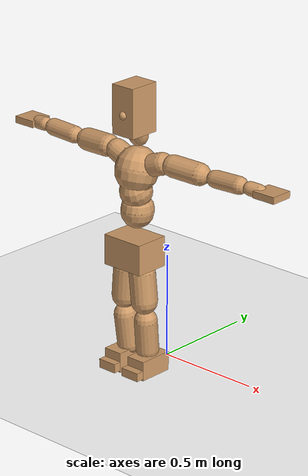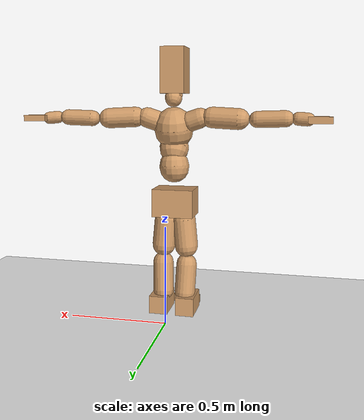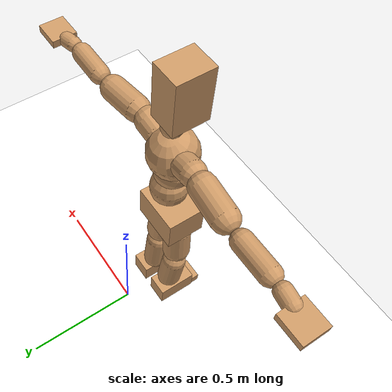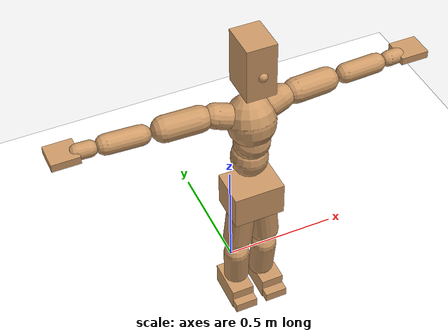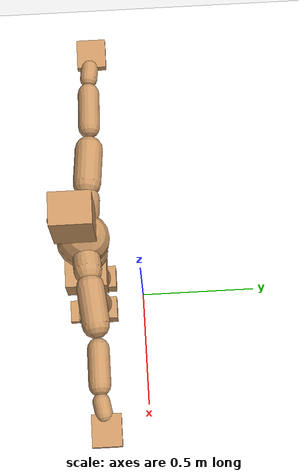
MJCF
<mujoco model="humanoid">
  <option integrator="implicitfast" />

  <visual>
    <global offwidth="1280" offheight="960" />
    <headlight active="1" ambient="0.34 0.34 0.34" diffuse="0.5 0.5 0.5" />
  </visual>

  <default>
    <joint damping="2" stiffness="2" armature="0.01" limited="true" solimplimit="0 .99 .01" />
    <geom condim="1" friction="0.7 0.005 0.0001" solimp=".99 .99 .003" solref="0.015 1" margin="0.001" rgba="0.8 0.6 .4 1" />
    <default class="smplcontact">
      <geom condim="3" friction="1. 0.005 0.0001" solref="0.015 1" solimp="0.98 0.98 0.001" priority="1" />
    </default>
    <default class="stiff_medium">
      <joint stiffness="10" />
    </default>
    <default class="stiff_medium_higher">
      <joint stiffness="50" />
    </default>
    <default class="stiff_high">
      <joint stiffness="100" />
    </default>
  </default>

  <asset>
    <texture type="skybox" builtin="gradient" rgb1="0.99 0.99 0.99" rgb2="0.608 0.828 0.892" width="100" />
    <texture builtin="flat" height="1278" mark="cross" markrgb="1 1 1" name="texgeom" random="0.01" rgb1="0.8 0.6 0.4" rgb2="0.8 0.6 0.4" type="cube" width="127" />
    <texture name="texplane" type="2d" builtin="checker" markrgb="1 1 1" rgb1="0.756 0.772 0.76" rgb2="0.6 0.6 0.6" width="100" height="100" />
    <material name="MatPlane" reflectance="0.5" texture="texplane" texrepeat="1 1" texuniform="true" />
    <material name="geom" texture="texgeom" texuniform="true" />
  </asset>

  <worldbody>
    <light name="tracking_light" pos="0 0 7" dir="0 0 -1" directional="true" cutoff="100" exponent="1" diffuse="1 1 1" specular="0.1 0.1 0.1" mode="trackcom" />
    <camera name="back" pos="0 3 2.4" xyaxes="-1 0 0 0 -1 2" mode="trackcom" />
    <camera name="side" pos="-3 0 2.4" xyaxes="0 -1 0 1 0 2" mode="trackcom" />
    <camera name="front_side" pos="-2.8 -2.8 0.8" xyaxes="0.5 -0.5 0 0.1 0.1 1" mode="trackcom" />
    <geom condim="3" name="floor" pos="0 0 0" rgba="1 1 1 1" size="100 100 .2" type="plane" material="MatPlane" />
    <body name="Pelvis" pos="-0.0018 -0.2233 0.603363" euler="90 0 0">
      <site name="Pelvis" size="0.01" />
      <freejoint name="Pelvis" />
      <geom type="box" pos="-0.0000 -0.0121 -0.0055" size="0.1069 0.0722 0.083" quat="1.0000 0.0000 0.0000 0.0000" density="3165.830099" name="Pelvis" />
      <body name="L_Hip" pos="0.0434375 -0.057125 -0.00425">
        <joint name="L_Hip_x" type="hinge" pos="0 0 0" axis="1 0 0" stiffness="4.682612346938775" range="-160.0 22.92" class="stiff_medium" damping="5.761376063259233" armature="0.003150516248715214"/>
        <joint name="L_Hip_y" type="hinge" pos="0 0 0" axis="0 1 0" stiffness="4.729285204081632" range="-70.0 70.0" class="stiff_medium" damping="5.2271909514404244" armature="0.005777516910851338"/>
        <joint name="L_Hip_z" type="hinge" pos="0 0 0" axis="0 0 1" stiffness="4.725288673469388" range="-28.65 90.0" class="stiff_medium" damping="3.8557989532863886" armature="0.003146302077085307"/>
        <geom type="capsule" density="2040.816327" fromto="0.0043125 -0.046875 -0.0005625 0.017125 -0.187625 -0.00225" size="0.0615" name="L_Hip" />
        <body name="L_Knee" pos="0.0214375 -0.2345 -0.0028125">
          <joint name="L_Knee_x" type="hinge" pos="0 0 0" axis="1 0 0" range="-5.16 171.89" damping="3.3147767653831215" armature="0.0034682055009749224" stiffness="0.9900423469387756"/>
          <joint name="L_Knee_y" type="hinge" pos="0 0 0" axis="0 1 0" range="-4.58 6.88" damping="4.406653617352898" armature="0.006327520325715421" stiffness="0.9590346565349543"/>
          <joint name="L_Knee_z" type="hinge" pos="0 0 0" axis="0 0 1" range="-6.88 4.58" damping="3.32725262272365" armature="0.003445606353385672" stiffness="1.0040513265306124"/>
          <geom type="capsule" density="1234.567901" fromto="-0.0016875 -0.04975 -0.0054375 -0.0068125 -0.199 -0.021875" size="0.0541" name="L_Knee" />
          <body name="L_Ankle" pos="-0.0085 -0.24875 -0.0273125">
            <joint name="L_Ankle_x" type="hinge" pos="0 0 0" axis="1 0 0" range="-45.84 45.84" class="stiff_medium" damping="3.6717736084900556" armature="0.005991965080890705" stiffness="6.25"/>
            <joint name="L_Ankle_y" type="hinge" pos="0 0 0" axis="0 1 0" range="-74.48 22.92" class="stiff_medium" damping="1.8585891029846908" armature="0.006141072806637222" stiffness="6.25"/>
            <joint name="L_Ankle_z" type="hinge" pos="0 0 0" axis="0 0 1" range="-4.58 4.58" class="stiff_medium" damping="4.001717943795461" armature="0.00711722066741981" stiffness="6.25"/>
            <geom type="box" pos="0.0145625 -0.0149375 0.015125" size="0.0483 0.0464 0.085" quat="1.0000 0.0000 0.0000 0.0000" density="449.071558" name="L_Ankle" class="smplcontact" />
            <body name="L_Toe" pos="0.0165 -0.034875 0.0745625">
              <joint name="L_Toe_x" type="hinge" pos="0 0 0" axis="1 0 0" range="-91.67 22.92" armature="0.007683229914736756" damping="1.3859319891986723" stiffness="1.25"/>
              <joint name="L_Toe_y" type="hinge" pos="0 0 0" axis="0 1 0" range="-4.58 4.58" armature="0.008367648440754674" damping="1.446344395428927" stiffness="1.25"/>
              <joint name="L_Toe_z" type="hinge" pos="0 0 0" axis="0 0 1" range="-4.58 4.58" armature="0.009751505861703973" damping="1.5613700603719776" stiffness="1.25"/>
              <geom type="box" pos="-0.001875 0.0034375 0.0155" size="0.0478 0.02 0.0496" quat="1.0000 0.0000 0.0000 0.0000" density="423.206892" name="L_Toe" class="smplcontact" />
            </body>
          </body>
        </body>
      </body>
      <body name="R_Hip" pos="-0.0423125 -0.0565625 -0.0026875">
        <joint name="R_Hip_x" type="hinge" pos="0 0 0" axis="1 0 0" stiffness="4.682612346938775" range="-160.0 22.92" class="stiff_medium" damping="5.761376063259233" armature="0.003150516248715214"/>
        <joint name="R_Hip_y" type="hinge" pos="0 0 0" axis="0 1 0" stiffness="4.729285204081632" range="-70.0 70.0" class="stiff_medium" damping="5.2271909514404244" armature="0.005777516910851338"/>
        <joint name="R_Hip_z" type="hinge" pos="0 0 0" axis="0 0 1" stiffness="4.725288673469388" range="-90.0 28.65" class="stiff_medium" damping="3.8557989532863886" armature="0.003146302077085307"/>
        <geom type="capsule" density="2040.816327" fromto="-0.0048125 -0.0478125 -0.001125 -0.019125 -0.191312 -0.0044375" size="0.0606" name="R_Hip" />
        <body name="R_Knee" pos="-0.0239375 -0.239125 -0.0055625">
          <joint name="R_Knee_x" type="hinge" pos="0 0 0" axis="1 0 0" range="-5.16 171.89" damping="3.3147767653831215" armature="0.0034682055009749224" stiffness="0.9900423469387756"/>
          <joint name="R_Knee_y" type="hinge" pos="0 0 0" axis="0 1 0" range="-6.88 4.58" damping="4.406653617352898" armature="0.006327520325715421" stiffness="0.9590346565349543"/>
          <joint name="R_Knee_z" type="hinge" pos="0 0 0" axis="0 0 1" range="-4.58 6.88" damping="3.32725262272365" armature="0.003445606353385672" stiffness="1.0040513265306124"/>
          <geom type="capsule" density="1234.567901" fromto="0.002 -0.0498125 -0.0053125 0.007875 -0.199187 -0.021125" size="0.0541" name="R_Knee" />
          <body name="R_Ankle" pos="0.009875 -0.249 -0.0264375">
            <joint name="R_Ankle_x" type="hinge" pos="0 0 0" axis="1 0 0" range="-45.84 45.84" class="stiff_medium" damping="3.6717736084900556" armature="0.005991965080890705" stiffness="6.25"/>
            <joint name="R_Ankle_y" type="hinge" pos="0 0 0" axis="0 1 0" range="-22.92 74.48" class="stiff_medium" damping="1.8585891029846908" armature="0.006141072806637222" stiffness="6.25"/>
            <joint name="R_Ankle_z" type="hinge" pos="0 0 0" axis="0 0 1" range="-4.58 4.58" class="stiff_medium" damping="4.001717943795461" armature="0.00711722066741981" stiffness="6.25"/>
            <geom type="box" pos="-0.01325 -0.010875 0.016" size="0.0483 0.0478 0.0865" quat="1.0000 0.0000 0.0000 0.0000" density="434.700981" name="R_Ankle" class="smplcontact" />
            <body name="R_Toe" pos="-0.015875 -0.0300625 0.0770625">
              <joint name="R_Toe_x" type="hinge" pos="0 0 0" axis="1 0 0" range="-91.67 22.92" armature="0.007683229914736756" damping="1.3859319891986723" stiffness="1.25"/>
              <joint name="R_Toe_y" type="hinge" pos="0 0 0" axis="0 1 0" range="-4.58 4.58" armature="0.008367648440754674" damping="1.446344395428927" stiffness="1.25"/>
              <joint name="R_Toe_z" type="hinge" pos="0 0 0" axis="0 0 1" range="-4.58 4.58" armature="0.009751505861703973" damping="1.5613700603719776" stiffness="1.25"/>
              <geom type="box" pos="0.002625 0.0028125 0.0141875" size="0.0479 0.0216 0.0493" quat="1.0000 0.0000 0.0000 0.0000" density="407.384095" name="R_Toe" class="smplcontact" />
            </body>
          </body>
        </body>
      </body>
      <body name="Torso" pos="-0.0025 0.109 -0.0267">
        <joint name="Torso_x" type="hinge" pos="0 0 0" axis="1 0 0" range="-25.78 57.3" class="stiff_medium" damping="14.377725126950713" armature="0.009518929822817209" stiffness="9.651831020408164"/>
        <joint name="Torso_y" type="hinge" pos="0 0 0" axis="0 1 0" range="-57.3 57.3" class="stiff_high" damping="17.047281200761134" armature="0.007489541703378375" stiffness="97.00519999999999"/>
        <joint name="Torso_z" type="hinge" pos="0 0 0" axis="0 0 1" range="-34.38 34.38" class="stiff_high" damping="18.56536513512957" armature="0.008825226346331878" stiffness="97.63851063829787"/>
        <geom type="capsule" density="2040.816327" fromto="0.0025 0.0608 0.0005 0.003 0.0743 0.0006" size="0.0769" name="Torso" />
        <body name="Spine" pos="0.0055 0.1352 0.0011">
          <joint name="Spine_x" type="hinge" pos="0 0 0" axis="1 0 0" stiffness="9.58583163265306" range="-25.78 57.3" class="stiff_medium" damping="14.26918361208374" armature="0.009440303089812765"/>
          <joint name="Spine_y" type="hinge" pos="0 0 0" axis="0 1 0" stiffness="9.576922244897958" range="-57.3 57.3" class="stiff_high" damping="6.76738571868883" armature="0.007471983870182017"/>
          <joint name="Spine_z" type="hinge" pos="0 0 0" axis="0 0 1" stiffness="19.01161469387755" range="-34.38 34.38" class="stiff_high" damping="10.689541255547075" armature="0.008347696197381863"/>
          <geom type="capsule" density="2040.816327" fromto="0.0007 0.0238 0.0114 0.0008 0.0291 0.014" size="0.0755" name="Spine" />
          <body name="Chest" pos="0.0015 0.0529 0.0254">
            <joint name="Chest_x" type="hinge" pos="0 0 0" axis="1 0 0" stiffness="9.387211020408163" range="-25.78 57.3" class="stiff_medium" damping="14.087997898862078" armature="0.009396788619791431"/>
            <joint name="Chest_y" type="hinge" pos="0 0 0" axis="0 1 0" stiffness="8.88616191489362" range="-57.3 57.3" class="stiff_high" damping="6.5161693940165115" armature="0.00746604382925993"/>
            <joint name="Chest_z" type="hinge" pos="0 0 0" axis="0 0 1" stiffness="18.95676244897959" range="-34.38 34.38" class="stiff_high" damping="10.53982249103985" armature="0.008138979020284567"/>
            <geom type="capsule" density="2040.816327" fromto="-0.0009 0.0682 -0.0173 -0.001 0.0833 -0.0212" size="0.1002" name="Chest" />
            <body name="Neck" pos="-0.0028 0.2139 -0.0429">
              <joint name="Neck_x" type="hinge" pos="0 0 0" axis="1 0 0" range="-28.65 57.3" class="stiff_medium_higher" damping="10.000000000000007" armature="0.010000000000000016" stiffness="50.0"/>
              <joint name="Neck_y" type="hinge" pos="0 0 0" axis="0 1 0" range="-40.11 40.11" class="stiff_medium_higher" damping="10.0" armature="0.01" stiffness="50.0"/>
              <joint name="Neck_z" type="hinge" pos="0 0 0" axis="0 0 1" range="-40.11 40.11" class="stiff_medium_higher" damping="10.000000000000014" armature="0.010000000000000026" stiffness="50.0"/>
              <geom type="capsule" density="1000" fromto="0.001 0.013 0.0103 0.0041 0.052 0.0411" size="0.0436" name="Neck" />
              <body name="Head" pos="0.0052 0.065 0.0513">
                <joint name="Head_x" type="hinge" pos="0 0 0" axis="1 0 0" range="-28.65 57.3" class="stiff_medium_higher" damping="2.000000000000003" armature="0.010000000000000031" stiffness="50.0"/>
                <joint name="Head_y" type="hinge" pos="0 0 0" axis="0 1 0" range="-40.11 40.11" class="stiff_medium_higher" damping="1.9999999999999998" armature="0.009999999999999998" stiffness="50.0"/>
                <joint name="Head_z" type="hinge" pos="0 0 0" axis="0 0 1" range="-40.11 40.11" class="stiff_medium_higher" damping="2.000000000000004" armature="0.010000000000000042" stiffness="50.0"/>
                <geom type="box" pos="-0.0042 0.0876 -0.0116" size="0.0606 0.1154 0.076" quat="1.0000 0.0000 0.0000 0.0000" density="1018.069894" name="Head" />
                <geom type="capsule" name="nose" size="0.02 0.01" pos="0 0.07 0.05" quat="1 0 0 0" mass="0" contype="0" conaffinity="0" />
              </body>
            </body>
            <body name="L_Thorax" pos="0.069935 0.108009 -0.0302637">
              <joint name="L_Thorax_x" type="hinge" pos="0 0 0" axis="1 0 0" range="-10.89 4.58" class="stiff_medium_higher" damping="16.50367442936431" armature="0.008237289712880716" stiffness="41.33205204081632"/>
              <joint name="L_Thorax_y" type="hinge" pos="0 0 0" axis="0 1 0" range="-28.65 17.19" class="stiff_medium_higher" damping="15.615380485833972" armature="0.007397181758642917" stiffness="41.2049"/>
              <joint name="L_Thorax_z" type="hinge" pos="0 0 0" axis="0 0 1" range="-31.51 40.11" class="stiff_medium_higher" damping="15.614845288813932" armature="0.007396422580499301" stiffness="41.206304591836734"/>
              <geom type="capsule" density="1000" fromto="0.0161525 0.00541375 -0.0015975 0.06461 0.021655 -0.00630125" size="0.0521" name="L_Thorax" />
              <body name="L_Shoulder" pos="0.0807625 0.0270687 -0.00789875">
                <joint name="L_Shoulder_x" type="hinge" pos="0 0 0" axis="1 0 0" range="-97.4 97.4" class="stiff_medium" damping="5.053222703168444" armature="0.008561219507331136" stiffness="8.28511887755102"/>
                <joint name="L_Shoulder_y" type="hinge" pos="0 0 0" axis="0 1 0" range="-108.86 80.21" class="stiff_medium" damping="4.696052433643626" armature="0.007424828192243072" stiffness="8.25043724489796"/>
                <joint name="L_Shoulder_z" type="hinge" pos="0 0 0" axis="0 0 1" range="-97.4 85.94" class="stiff_medium" damping="4.696316861704073" armature="0.007423822707357086" stiffness="8.252483979591837"/>
                <geom type="capsule" density="1000" fromto="0.0460612 -0.0023075 -0.00488125 0.184334 -0.0090525 -0.019525" size="0.0517" name="L_Shoulder" />
                <body name="L_Elbow" pos="0.230395 -0.01136 -0.0244062">
                  <joint name="L_Elbow_x" type="hinge" pos="0 0 0" axis="1 0 0" range="-17.19 4.58" damping="4.35790590630549" armature="0.009089595760700233" stiffness="1.6714797346938777"/>
                  <joint name="L_Elbow_y" type="hinge" pos="0 0 0" axis="0 1 0" range="-180.0 17.19" damping="3.973960072278748" armature="0.0075599991822537654" stiffness="1.6711492448979592"/>
                  <joint name="L_Elbow_z" type="hinge" pos="0 0 0" axis="0 0 1" range="-100.84 4.58" damping="3.9732408069423326" armature="0.007554721526974213" stiffness="1.671711387755102"/>
                  <geom type="capsule" density="1000" fromto="0.0441975 0.0015975 -0.0001775 0.176967 0.00639 -0.00079875" size="0.0405" name="L_Elbow" />
                  <body name="L_Wrist" pos="0.221165 0.0079875 -0.001065">
                    <joint name="L_Wrist_x" type="hinge" pos="0 0 0" axis="1 0 0" range="-180.0 22.92" armature="0.00926838898361612" damping="1.7953441559357752" stiffness="1.738846224489796"/>
                    <joint name="L_Wrist_y" type="hinge" pos="0 0 0" axis="0 1 0" range="-17.19 17.19" armature="0.008039907338787608" damping="1.6695812073111214" stiffness="1.7335407551020405"/>
                    <joint name="L_Wrist_z" type="hinge" pos="0 0 0" axis="0 0 1" range="-22.92 22.92" armature="0.007970783232335157" damping="1.663414263462603" stiffness="1.7356807551020408"/>
                    <geom type="capsule" density="1000" fromto="0.01491 -0.00142 -0.0026625 0.05964 -0.00576875 -0.01065" size="0.0318" name="L_Wrist" class="smplcontact" />
                    <body name="L_Hand" pos="0.07455 -0.0072775 -0.0132237">
                      <joint name="L_Hand_x" type="hinge" pos="0 0 0" axis="1 0 0" range="-17.19 17.19" armature="0.009907489981019355" damping="1.8754085109863605" stiffness="1.7749990612244897"/>
                      <joint name="L_Hand_y" type="hinge" pos="0 0 0" axis="0 1 0" range="-51.57 51.57" armature="0.008881214164334949" damping="1.7756208279347765" stiffness="1.7749990408163265"/>
                      <joint name="L_Hand_z" type="hinge" pos="0 0 0" axis="0 0 1" range="-91.67 91.67" armature="0.008607646402110845" damping="1.7480597104275557" stiffness="1.7749990000000002"/>
                      <geom type="box" pos="0.0437537 0.0008875 -0.0051475" size="0.0585 0.0158 0.0538" quat="1.0000 0.0000 0.0000 0.0000" density="400.552564" name="L_Hand" class="smplcontact" />
                    </body>
                  </body>
                </body>
              </body>
            </body>
            <body name="R_Thorax" pos="-0.0725975 0.105435 -0.0342575">
              <joint name="R_Thorax_x" type="hinge" pos="0 0 0" axis="1 0 0" range="-10.89 4.58" class="stiff_medium_higher" damping="16.50367442936431" armature="0.008237289712880716" stiffness="41.33205204081632"/>
              <joint name="R_Thorax_y" type="hinge" pos="0 0 0" axis="0 1 0" range="-17.19 28.65" class="stiff_medium_higher" damping="15.615380485833972" armature="0.007397181758642917" stiffness="41.2049"/>
              <joint name="R_Thorax_z" type="hinge" pos="0 0 0" axis="0 0 1" range="-40.11 31.51" class="stiff_medium_higher" damping="15.614845288813932" armature="0.007396422580499301" stiffness="41.206304591836734"/>
              <geom type="capsule" density="1000" fromto="-0.01704 0.00576875 -0.0015975 -0.06816 0.023075 -0.00647875" size="0.0511" name="R_Thorax" />
              <body name="R_Shoulder" pos="-0.0852 0.0289325 -0.00807625">
                <joint name="R_Shoulder_x" type="hinge" pos="0 0 0" axis="1 0 0" range="-97.4 97.4" class="stiff_medium" damping="5.053222703168444" armature="0.008561219507331136" stiffness="8.28511887755102"/>
                <joint name="R_Shoulder_y" type="hinge" pos="0 0 0" axis="0 1 0" range="-80.21 108.86" class="stiff_medium" damping="4.696052433643626" armature="0.007424828192243072" stiffness="8.25043724489796"/>
                <joint name="R_Shoulder_z" type="hinge" pos="0 0 0" axis="0 0 1" range="-85.94 97.4" class="stiff_medium" damping="4.696316861704073" armature="0.007423822707357086" stiffness="8.252483979591837"/>
                <geom type="capsule" density="1000" fromto="-0.0449963 -0.00239625 -0.00381625 -0.180163 -0.00949625 -0.0151763" size="0.0531" name="R_Shoulder" />
                <body name="R_Elbow" pos="-0.225159 -0.0118037 -0.0189925">
                  <joint name="R_Elbow_x" type="hinge" pos="0 0 0" axis="1 0 0" range="-17.19 4.58" damping="4.35790590630549" armature="0.009089595760700233" stiffness="1.6714797346938777"/>
                  <joint name="R_Elbow_y" type="hinge" pos="0 0 0" axis="0 1 0" range="-17.19 180.0" damping="3.973960072278748" armature="0.0075599991822537654" stiffness="1.6711492448979592"/>
                  <joint name="R_Elbow_z" type="hinge" pos="0 0 0" axis="0 0 1" range="-4.58 100.84" damping="3.9732408069423326" armature="0.007554721526974213" stiffness="1.671711387755102"/>
                  <geom type="capsule" density="1000" fromto="-0.0453512 0.00142 -0.00097625 -0.181227 0.0055025 -0.003905" size="0.0408" name="R_Elbow" />
                  <body name="R_Wrist" pos="-0.226579 0.0069225 -0.00497">
                    <joint name="R_Wrist_x" type="hinge" pos="0 0 0" axis="1 0 0" range="-180.0 22.92" armature="0.00926838898361612" damping="1.7953441559357752" stiffness="1.738846224489796"/>
                    <joint name="R_Wrist_y" type="hinge" pos="0 0 0" axis="0 1 0" range="-17.19 17.19" armature="0.008039907338787608" damping="1.6695812073111214" stiffness="1.7335407551020405"/>
                    <joint name="R_Wrist_z" type="hinge" pos="0 0 0" axis="0 0 1" range="-22.92 22.92" armature="0.007970783232335157" damping="1.663414263462603" stiffness="1.7356807551020408"/>
                    <geom type="capsule" density="1000" fromto="-0.0149987 -0.001065 -0.00186375 -0.0600837 -0.00434875 -0.00736625" size="0.0326" name="R_Wrist" class="smplcontact" />
                    <body name="R_Hand" pos="-0.0750825 -0.00541375 -0.00914125">
                      <joint name="R_Hand_x" type="hinge" pos="0 0 0" axis="1 0 0" range="-17.19 17.19" armature="0.009907489981019355" damping="1.8754085109863605" stiffness="1.7749990612244897"/>
                      <joint name="R_Hand_y" type="hinge" pos="0 0 0" axis="0 1 0" range="-51.57 51.57" armature="0.008881214164334949" damping="1.7756208279347765" stiffness="1.7749990408163265"/>
                      <joint name="R_Hand_z" type="hinge" pos="0 0 0" axis="0 0 1" range="-91.67 91.67" armature="0.008607646402110845" damping="1.7480597104275557" stiffness="1.7749990000000002"/>
                      <geom type="box" pos="-0.0410025 -0.00079875 -0.00701125" size="0.0569 0.0164 0.0546" quat="1.0000 0.0000 0.0000 0.0000" density="403.679611" name="R_Hand" class="smplcontact" />
                    </body>
                  </body>
                </body>
              </body>
            </body>
          </body>
        </body>
      </body>
    </body>
  </worldbody>
  <actuator>
    <general name="L_Hip_x" joint="L_Hip_x" biastype="affine" gainprm="134.5455305788832" biasprm="-100.82823820114426 -84.28702224489795 -0.7681834751012311" ctrllimited="true" ctrlrange="-1 1" forcerange="-168.5740444897959 168.5740444897959" />
    <general name="L_Hip_y" joint="L_Hip_y" biastype="affine" gainprm="104.00241357711633" biasprm="0.0 -85.12713367346939 -1.045438190288085" ctrllimited="true" ctrlrange="-1 1" forcerange="-170.25426734693878 170.25426734693878" />
    <general name="L_Hip_z" joint="L_Hip_z" biastype="affine" gainprm="88.0675601736452" biasprm="45.53682947031718 -85.05519612244898 -0.7711597906572777" ctrllimited="true" ctrlrange="-1 1" forcerange="-170.11039224489795 170.11039224489795" />
    <general name="L_Knee_x" joint="L_Knee_x" biastype="affine" gainprm="137.6700859239888" biasprm="129.64548673316378 -89.1038112244898 -0.8286941913457804" ctrllimited="true" ctrlrange="-1 1" forcerange="-178.2076224489796 178.2076224489796" />
    <general name="L_Knee_y" joint="L_Knee_y" biastype="affine" gainprm="8.63194770327106" biasprm="1.7324153331172283 -86.3131190881459 -1.1016634043382245" ctrllimited="true" ctrlrange="-1 1" forcerange="-172.6262381762918 172.6262381762918" />
    <general name="L_Knee_z" joint="L_Knee_z" biastype="affine" gainprm="9.03712757714746" biasprm="-1.8137341559720035 -90.36461938775511 -0.8318131556809125" ctrllimited="true" ctrlrange="-1 1" forcerange="-180.72923877551023 180.72923877551023" />
    <general name="L_Ankle_x" joint="L_Ankle_x" biastype="affine" gainprm="45.003314762673796" biasprm="0.0 -56.25 -1.223924536163352" ctrllimited="true" ctrlrange="-1 1" forcerange="-112.5 112.5" />
    <general name="L_Ankle_y" joint="L_Ankle_y" biastype="affine" gainprm="47.811113196819676" biasprm="-25.309455815482774 -56.25 -1.2390594019897938" ctrllimited="true" ctrlrange="-1 1" forcerange="-112.5 112.5" />
    <general name="L_Ankle_z" joint="L_Ankle_z" biastype="affine" gainprm="4.496404485450391" biasprm="0.0 -56.25 -1.3339059812651537" ctrllimited="true" ctrlrange="-1 1" forcerange="-112.5 112.5" />
    <general name="L_Toe_x" joint="L_Toe_x" biastype="affine" gainprm="44.999387771856796" biasprm="-26.998061866787282 -45.0 -0.554372795679469" ctrllimited="true" ctrlrange="-1 1" forcerange="-90.0 90.0" />
    <general name="L_Toe_y" joint="L_Toe_y" biastype="affine" gainprm="3.597123588360313" biasprm="0.0 -45.0 -0.5785377581715708" ctrllimited="true" ctrlrange="-1 1" forcerange="-90.0 90.0" />
    <general name="L_Toe_z" joint="L_Toe_z" biastype="affine" gainprm="3.597123588360313" biasprm="0.0 -45.0 -0.6245480241487911" ctrllimited="true" ctrlrange="-1 1" forcerange="-90.0 90.0" />
    <general name="R_Hip_x" joint="R_Hip_x" biastype="affine" gainprm="134.5455305788832" biasprm="-100.82823820114426 -84.28702224489795 -0.7681834751012311" ctrllimited="true" ctrlrange="-1 1" forcerange="-168.5740444897959 168.5740444897959" />
    <general name="R_Hip_y" joint="R_Hip_y" biastype="affine" gainprm="104.00241357711633" biasprm="0.0 -85.12713367346939 -1.045438190288085" ctrllimited="true" ctrlrange="-1 1" forcerange="-170.25426734693878 170.25426734693878" />
    <general name="R_Hip_z" joint="R_Hip_z" biastype="affine" gainprm="88.0675601736452" biasprm="-45.53682947031718 -85.05519612244898 -0.7711597906572777" ctrllimited="true" ctrlrange="-1 1" forcerange="-170.11039224489795 170.11039224489795" />
    <general name="R_Knee_x" joint="R_Knee_x" biastype="affine" gainprm="137.6700859239888" biasprm="129.64548673316378 -89.1038112244898 -0.8286941913457804" ctrllimited="true" ctrlrange="-1 1" forcerange="-178.2076224489796 178.2076224489796" />
    <general name="R_Knee_y" joint="R_Knee_y" biastype="affine" gainprm="8.63194770327106" biasprm="-1.7324153331172283 -86.3131190881459 -1.1016634043382245" ctrllimited="true" ctrlrange="-1 1" forcerange="-172.6262381762918 172.6262381762918" />
    <general name="R_Knee_z" joint="R_Knee_z" biastype="affine" gainprm="9.03712757714746" biasprm="1.8137341559720035 -90.36461938775511 -0.8318131556809125" ctrllimited="true" ctrlrange="-1 1" forcerange="-180.72923877551023 180.72923877551023" />
    <general name="R_Ankle_x" joint="R_Ankle_x" biastype="affine" gainprm="45.003314762673796" biasprm="0.0 -56.25 -1.223924536163352" ctrllimited="true" ctrlrange="-1 1" forcerange="-112.5 112.5" />
    <general name="R_Ankle_y" joint="R_Ankle_y" biastype="affine" gainprm="47.811113196819676" biasprm="25.309455815482774 -56.25 -1.2390594019897938" ctrllimited="true" ctrlrange="-1 1" forcerange="-112.5 112.5" />
    <general name="R_Ankle_z" joint="R_Ankle_z" biastype="affine" gainprm="4.496404485450391" biasprm="0.0 -56.25 -1.3339059812651537" ctrllimited="true" ctrlrange="-1 1" forcerange="-112.5 112.5" />
    <general name="R_Toe_x" joint="R_Toe_x" biastype="affine" gainprm="44.999387771856796" biasprm="-26.998061866787282 -45.0 -0.554372795679469" ctrllimited="true" ctrlrange="-1 1" forcerange="-90.0 90.0" />
    <general name="R_Toe_y" joint="R_Toe_y" biastype="affine" gainprm="3.597123588360313" biasprm="0.0 -45.0 -0.5785377581715708" ctrllimited="true" ctrlrange="-1 1" forcerange="-90.0 90.0" />
    <general name="R_Toe_z" joint="R_Toe_z" biastype="affine" gainprm="3.597123588360313" biasprm="0.0 -45.0 -0.6245480241487911" ctrllimited="true" ctrlrange="-1 1" forcerange="-90.0 90.0" />
    <general name="Torso_x" joint="Torso_x" biastype="affine" gainprm="167.94412321258363" biasprm="63.71688449278569 -231.64394448979593 -3.8340600338535236" ctrllimited="true" ctrlrange="-1 1" forcerange="-347.4659167346939 347.4659167346939" />
    <general name="Torso_y" joint="Torso_y" biastype="affine" gainprm="232.82962929152654" biasprm="0.0 -232.81248 -3.4094562401522266" ctrllimited="true" ctrlrange="-1 1" forcerange="-349.21871999999996 349.21871999999996" />
    <general name="Torso_z" joint="Torso_z" biastype="affine" gainprm="140.60981207084777" biasprm="0.0 -234.33242553191488 -3.7130730270259145" ctrllimited="true" ctrlrange="-1 1" forcerange="-351.49863829787233 351.49863829787233" />
    <general name="Spine_x" joint="Spine_x" biastype="affine" gainprm="166.79571838808337" biasprm="63.28118733259974 -230.05995918367344 -3.805115629888997" ctrllimited="true" ctrlrange="-1 1" forcerange="-345.0899387755102 345.0899387755102" />
    <general name="Spine_y" joint="Spine_y" biastype="affine" gainprm="229.8630646638908" biasprm="0.0 -229.846133877551 -3.383692859344415" ctrllimited="true" ctrlrange="-1 1" forcerange="-344.76920081632653 344.76920081632653" />
    <general name="Spine_z" joint="Spine_z" biastype="affine" gainprm="136.89370883443928" biasprm="0.0 -228.1393763265306 -3.563180418515692" ctrllimited="true" ctrlrange="-1 1" forcerange="-342.2090644897959 342.2090644897959" />
    <general name="Chest_x" joint="Chest_x" biastype="affine" gainprm="163.33967315636679" biasprm="61.969986734336544 -225.29306448979594 -3.7567994396965543" ctrllimited="true" ctrlrange="-1 1" forcerange="-337.9395967346939 337.9395967346939" />
    <general name="Chest_y" joint="Chest_y" biastype="affine" gainprm="213.2835955669555" biasprm="0.0 -213.26788595744688 -3.2580846970082558" ctrllimited="true" ctrlrange="-1 1" forcerange="-319.9018289361703 319.9018289361703" />
    <general name="Chest_z" joint="Chest_z" biastype="affine" gainprm="136.49874357962614" biasprm="0.0 -227.48114938775507 -3.51327416367995" ctrllimited="true" ctrlrange="-1 1" forcerange="-341.2217240816326 341.2217240816326" />
    <general name="Neck_x" joint="Neck_x" biastype="affine" gainprm="27.00198885760427" biasprm="9.000662952534757 -36.0 -0.8000000000000006" ctrllimited="true" ctrlrange="-1 1" forcerange="-72.0 72.0" />
    <general name="Neck_y" joint="Neck_y" biastype="affine" gainprm="25.20185626709732" biasprm="0.0 -36.0 -0.8" ctrllimited="true" ctrlrange="-1 1" forcerange="-72.0 72.0" />
    <general name="Neck_z" joint="Neck_z" biastype="affine" gainprm="25.20185626709732" biasprm="0.0 -36.0 -0.8000000000000012" ctrllimited="true" ctrlrange="-1 1" forcerange="-72.0 72.0" />
    <general name="Head_x" joint="Head_x" biastype="affine" gainprm="18.001325905069514" biasprm="6.000441968356505 -24.0 -0.8000000000000013" ctrllimited="true" ctrlrange="-1 1" forcerange="-48.0 48.0" />
    <general name="Head_y" joint="Head_y" biastype="affine" gainprm="16.801237511398213" biasprm="0.0 -24.0 -0.7999999999999999" ctrllimited="true" ctrlrange="-1 1" forcerange="-48.0 48.0" />
    <general name="Head_z" joint="Head_z" biastype="affine" gainprm="16.801237511398213" biasprm="0.0 -24.0 -0.8000000000000016" ctrllimited="true" ctrlrange="-1 1" forcerange="-48.0 48.0" />
    <general name="L_Thorax_x" joint="L_Thorax_x" biastype="affine" gainprm="13.391705647542844" biasprm="-5.462292348803839 -99.19692489795918 -1.320293954349145" ctrllimited="true" ctrlrange="-1 1" forcerange="-198.39384979591836 198.39384979591836" />
    <general name="L_Thorax_y" joint="L_Thorax_y" biastype="affine" gainprm="39.55961780190927" biasprm="-9.889904450477317 -98.89176 -1.249230438866718" ctrllimited="true" ctrlrange="-1 1" forcerange="-197.78352 197.78352" />
    <general name="L_Thorax_z" joint="L_Thorax_z" biastype="affine" gainprm="61.80969474430838" biasprm="7.4219962971383975 -98.89513102040816 -1.2491876231051147" ctrllimited="true" ctrlrange="-1 1" forcerange="-197.79026204081632 197.79026204081632" />
    <general name="L_Shoulder_x" joint="L_Shoulder_x" biastype="affine" gainprm="67.60460910996468" biasprm="0.0 -39.768570612244886 -1.3475260541782519" ctrllimited="true" ctrlrange="-1 1" forcerange="-79.53714122448977 79.53714122448977" />
    <general name="L_Shoulder_y" joint="L_Shoulder_y" biastype="affine" gainprm="65.34136439993874" biasprm="-9.901253980315465 -39.6020987755102 -1.2522806489716336" ctrllimited="true" ctrlrange="-1 1" forcerange="-79.2041975510204 79.2041975510204" />
    <general name="L_Shoulder_z" joint="L_Shoulder_z" biastype="affine" gainprm="63.376831969533896" biasprm="-3.9614840971466134 -39.61192310204081 -1.2523511631210864" ctrllimited="true" ctrlrange="-1 1" forcerange="-79.22384620408162 79.22384620408162" />
    <general name="L_Elbow_x" joint="L_Elbow_x" biastype="affine" gainprm="11.43166310683652" biasprm="-6.621647761929654 -60.17327044897959 -0.6972649450088785" ctrllimited="true" ctrlrange="-1 1" forcerange="-120.34654089795919 120.34654089795919" />
    <general name="L_Elbow_y" joint="L_Elbow_y" biastype="affine" gainprm="103.52613409284974" biasprm="-85.47639277679836 -60.16137281632653 -0.6358336115645997" ctrllimited="true" ctrlrange="-1 1" forcerange="-120.32274563265307 120.32274563265307" />
    <general name="L_Elbow_z" joint="L_Elbow_z" biastype="affine" gainprm="55.364857375302314" biasprm="-50.55417540264278 -60.181609959183675 -0.6357185291107732" ctrllimited="true" ctrlrange="-1 1" forcerange="-120.36321991836735 120.36321991836735" />
    <general name="L_Wrist_x" joint="L_Wrist_x" biastype="affine" gainprm="18.475008746127838" biasprm="-14.301470401349109 -10.433077346938775 -0.7181376623743101" ctrllimited="true" ctrlrange="-1 1" forcerange="-20.86615469387755 20.86615469387755" />
    <general name="L_Wrist_y" joint="L_Wrist_y" biastype="affine" gainprm="3.120603210231214" biasprm="0.0 -10.401244530612242 -0.6678324829244486" ctrllimited="true" ctrlrange="-1 1" forcerange="-20.802489061224485 20.802489061224485" />
    <general name="L_Wrist_z" joint="L_Wrist_z" biastype="affine" gainprm="4.165940658633199" biasprm="0.0 -10.414084530612245 -0.6653657053850413" ctrllimited="true" ctrlrange="-1 1" forcerange="-20.82816906122449 20.82816906122449" />
    <general name="L_Hand_x" joint="L_Hand_x" biastype="affine" gainprm="3.1952336582294483" biasprm="0.0 -10.649994367346938 -0.7501634043945442" ctrllimited="true" ctrlrange="-1 1" forcerange="-21.299988734693876 21.299988734693876" />
    <general name="L_Hand_y" joint="L_Hand_y" biastype="affine" gainprm="9.585700864476143" biasprm="0.0 -10.64999424489796 -0.7102483311739106" ctrllimited="true" ctrlrange="-1 1" forcerange="-21.29998848979592 21.29998848979592" />
    <general name="L_Hand_z" joint="L_Hand_z" biastype="affine" gainprm="17.03938681481915" biasprm="0.0 -10.649994000000001 -0.6992238841710223" ctrllimited="true" ctrlrange="-1 1" forcerange="-21.299988000000003 21.299988000000003" />
    <general name="R_Thorax_x" joint="R_Thorax_x" biastype="affine" gainprm="13.391705647542844" biasprm="-5.462292348803839 -99.19692489795918 -1.320293954349145" ctrllimited="true" ctrlrange="-1 1" forcerange="-198.39384979591836 198.39384979591836" />
    <general name="R_Thorax_y" joint="R_Thorax_y" biastype="affine" gainprm="39.55961780190927" biasprm="9.889904450477312 -98.89176 -1.249230438866718" ctrllimited="true" ctrlrange="-1 1" forcerange="-197.78352 197.78352" />
    <general name="R_Thorax_z" joint="R_Thorax_z" biastype="affine" gainprm="61.80969474430838" biasprm="-7.4219962971383975 -98.89513102040816 -1.2491876231051147" ctrllimited="true" ctrlrange="-1 1" forcerange="-197.79026204081632 197.79026204081632" />
    <general name="R_Shoulder_x" joint="R_Shoulder_x" biastype="affine" gainprm="67.60460910996468" biasprm="0.0 -39.768570612244886 -1.3475260541782519" ctrllimited="true" ctrlrange="-1 1" forcerange="-79.53714122448977 79.53714122448977" />
    <general name="R_Shoulder_y" joint="R_Shoulder_y" biastype="affine" gainprm="65.34136439993874" biasprm="9.901253980315465 -39.6020987755102 -1.2522806489716336" ctrllimited="true" ctrlrange="-1 1" forcerange="-79.2041975510204 79.2041975510204" />
    <general name="R_Shoulder_z" joint="R_Shoulder_z" biastype="affine" gainprm="63.376831969533896" biasprm="3.9614840971466045 -39.61192310204081 -1.2523511631210864" ctrllimited="true" ctrlrange="-1 1" forcerange="-79.22384620408162 79.22384620408162" />
    <general name="R_Elbow_x" joint="R_Elbow_x" biastype="affine" gainprm="11.43166310683652" biasprm="-6.621647761929654 -60.17327044897959 -0.6972649450088785" ctrllimited="true" ctrlrange="-1 1" forcerange="-120.34654089795919 120.34654089795919" />
    <general name="R_Elbow_y" joint="R_Elbow_y" biastype="affine" gainprm="103.52613409284974" biasprm="85.47639277679836 -60.16137281632653 -0.6358336115645997" ctrllimited="true" ctrlrange="-1 1" forcerange="-120.32274563265307 120.32274563265307" />
    <general name="R_Elbow_z" joint="R_Elbow_z" biastype="affine" gainprm="55.364857375302314" biasprm="50.55417540264277 -60.181609959183675 -0.6357185291107732" ctrllimited="true" ctrlrange="-1 1" forcerange="-120.36321991836735 120.36321991836735" />
    <general name="R_Wrist_x" joint="R_Wrist_x" biastype="affine" gainprm="18.475008746127838" biasprm="-14.301470401349109 -10.433077346938775 -0.7181376623743101" ctrllimited="true" ctrlrange="-1 1" forcerange="-20.86615469387755 20.86615469387755" />
    <general name="R_Wrist_y" joint="R_Wrist_y" biastype="affine" gainprm="3.120603210231214" biasprm="0.0 -10.401244530612242 -0.6678324829244486" ctrllimited="true" ctrlrange="-1 1" forcerange="-20.802489061224485 20.802489061224485" />
    <general name="R_Wrist_z" joint="R_Wrist_z" biastype="affine" gainprm="4.165940658633199" biasprm="0.0 -10.414084530612245 -0.6653657053850413" ctrllimited="true" ctrlrange="-1 1" forcerange="-20.82816906122449 20.82816906122449" />
    <general name="R_Hand_x" joint="R_Hand_x" biastype="affine" gainprm="3.1952336582294483" biasprm="0.0 -10.649994367346938 -0.7501634043945442" ctrllimited="true" ctrlrange="-1 1" forcerange="-21.299988734693876 21.299988734693876" />
    <general name="R_Hand_y" joint="R_Hand_y" biastype="affine" gainprm="9.585700864476143" biasprm="0.0 -10.64999424489796 -0.7102483311739106" ctrllimited="true" ctrlrange="-1 1" forcerange="-21.29998848979592 21.29998848979592" />
    <general name="R_Hand_z" joint="R_Hand_z" biastype="affine" gainprm="17.03938681481915" biasprm="0.0 -10.649994000000001 -0.6992238841710223" ctrllimited="true" ctrlrange="-1 1" forcerange="-21.299988000000003 21.299988000000003" />
  </actuator>
  <contact>
    <exclude body1="Torso" body2="Chest" />
    <exclude body1="Head" body2="Chest" />
    <exclude body1="R_Knee" body2="R_Toe" />
    <exclude body1="R_Knee" body2="L_Ankle" />
    <exclude body1="R_Knee" body2="L_Toe" />
    <exclude body1="L_Knee" body2="L_Toe" />
    <exclude body1="L_Knee" body2="R_Ankle" />
    <exclude body1="L_Knee" body2="R_Toe" />
    <exclude body1="L_Shoulder" body2="Chest" />
    <exclude body1="R_Shoulder" body2="Chest" />
  </contact>
  <sensor>
    <framelinvel name="sensor_Pelvis_framelinvel" objtype="xbody" objname="Pelvis" />
    <framelinvel name="sensor_L_Hip_framelinvel" objtype="xbody" objname="L_Hip" />
    <framelinvel name="sensor_L_Knee_framelinvel" objtype="xbody" objname="L_Knee" />
    <framelinvel name="sensor_L_Ankle_framelinvel" objtype="xbody" objname="L_Ankle" />
    <framelinvel name="sensor_L_Toe_framelinvel" objtype="xbody" objname="L_Toe" />
    <framelinvel name="sensor_R_Hip_framelinvel" objtype="xbody" objname="R_Hip" />
    <framelinvel name="sensor_R_Knee_framelinvel" objtype="xbody" objname="R_Knee" />
    <framelinvel name="sensor_R_Ankle_framelinvel" objtype="xbody" objname="R_Ankle" />
    <framelinvel name="sensor_R_Toe_framelinvel" objtype="xbody" objname="R_Toe" />
    <framelinvel name="sensor_Torso_framelinvel" objtype="xbody" objname="Torso" />
    <framelinvel name="sensor_Spine_framelinvel" objtype="xbody" objname="Spine" />
    <framelinvel name="sensor_Chest_framelinvel" objtype="xbody" objname="Chest" />
    <framelinvel name="sensor_Neck_framelinvel" objtype="xbody" objname="Neck" />
    <framelinvel name="sensor_Head_framelinvel" objtype="xbody" objname="Head" />
    <framelinvel name="sensor_L_Thorax_framelinvel" objtype="xbody" objname="L_Thorax" />
    <framelinvel name="sensor_L_Shoulder_framelinvel" objtype="xbody" objname="L_Shoulder" />
    <framelinvel name="sensor_L_Elbow_framelinvel" objtype="xbody" objname="L_Elbow" />
    <framelinvel name="sensor_L_Wrist_framelinvel" objtype="xbody" objname="L_Wrist" />
    <framelinvel name="sensor_L_Hand_framelinvel" objtype="xbody" objname="L_Hand" />
    <framelinvel name="sensor_R_Thorax_framelinvel" objtype="xbody" objname="R_Thorax" />
    <framelinvel name="sensor_R_Shoulder_framelinvel" objtype="xbody" objname="R_Shoulder" />
    <framelinvel name="sensor_R_Elbow_framelinvel" objtype="xbody" objname="R_Elbow" />
    <framelinvel name="sensor_R_Wrist_framelinvel" objtype="xbody" objname="R_Wrist" />
    <framelinvel name="sensor_R_Hand_framelinvel" objtype="xbody" objname="R_Hand" />
    <frameangvel name="sensor_Pelvis_frameangvel" objtype="xbody" objname="Pelvis" />
    <frameangvel name="sensor_L_Hip_frameangvel" objtype="xbody" objname="L_Hip" />
    <frameangvel name="sensor_L_Knee_frameangvel" objtype="xbody" objname="L_Knee" />
    <frameangvel name="sensor_L_Ankle_frameangvel" objtype="xbody" objname="L_Ankle" />
    <frameangvel name="sensor_L_Toe_frameangvel" objtype="xbody" objname="L_Toe" />
    <frameangvel name="sensor_R_Hip_frameangvel" objtype="xbody" objname="R_Hip" />
    <frameangvel name="sensor_R_Knee_frameangvel" objtype="xbody" objname="R_Knee" />
    <frameangvel name="sensor_R_Ankle_frameangvel" objtype="xbody" objname="R_Ankle" />
    <frameangvel name="sensor_R_Toe_frameangvel" objtype="xbody" objname="R_Toe" />
    <frameangvel name="sensor_Torso_frameangvel" objtype="xbody" objname="Torso" />
    <frameangvel name="sensor_Spine_frameangvel" objtype="xbody" objname="Spine" />
    <frameangvel name="sensor_Chest_frameangvel" objtype="xbody" objname="Chest" />
    <frameangvel name="sensor_Neck_frameangvel" objtype="xbody" objname="Neck" />
    <frameangvel name="sensor_Head_frameangvel" objtype="xbody" objname="Head" />
    <frameangvel name="sensor_L_Thorax_frameangvel" objtype="xbody" objname="L_Thorax" />
    <frameangvel name="sensor_L_Shoulder_frameangvel" objtype="xbody" objname="L_Shoulder" />
    <frameangvel name="sensor_L_Elbow_frameangvel" objtype="xbody" objname="L_Elbow" />
    <frameangvel name="sensor_L_Wrist_frameangvel" objtype="xbody" objname="L_Wrist" />
    <frameangvel name="sensor_L_Hand_frameangvel" objtype="xbody" objname="L_Hand" />
    <frameangvel name="sensor_R_Thorax_frameangvel" objtype="xbody" objname="R_Thorax" />
    <frameangvel name="sensor_R_Shoulder_frameangvel" objtype="xbody" objname="R_Shoulder" />
    <frameangvel name="sensor_R_Elbow_frameangvel" objtype="xbody" objname="R_Elbow" />
    <frameangvel name="sensor_R_Wrist_frameangvel" objtype="xbody" objname="R_Wrist" />
    <frameangvel name="sensor_R_Hand_frameangvel" objtype="xbody" objname="R_Hand" />
    <subtreelinvel name="Chest_subtreelinvel" body="Chest" />
    <gyro name="Pelvis_gyro" site="Pelvis" />
  </sensor>
</mujoco>
